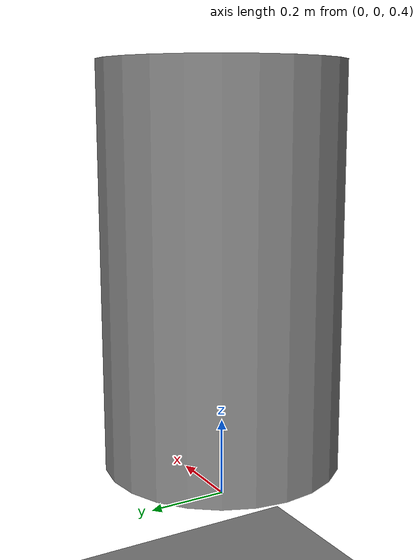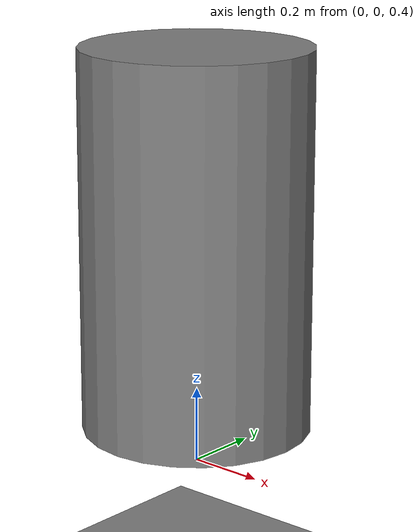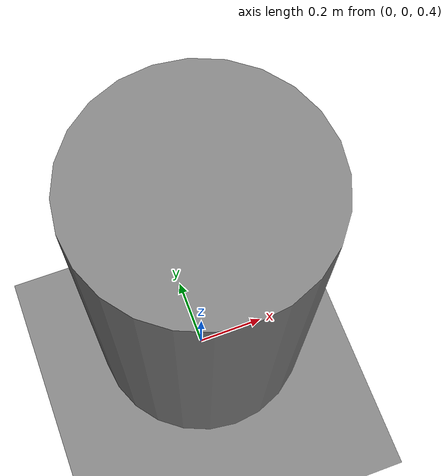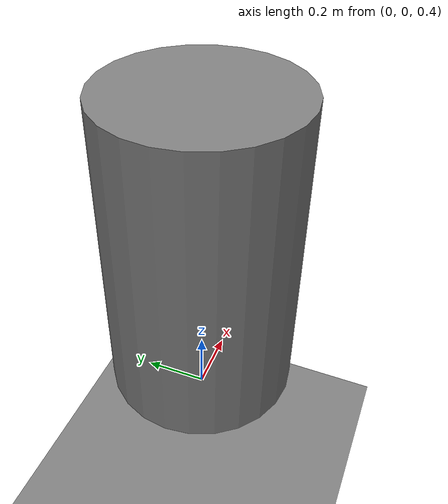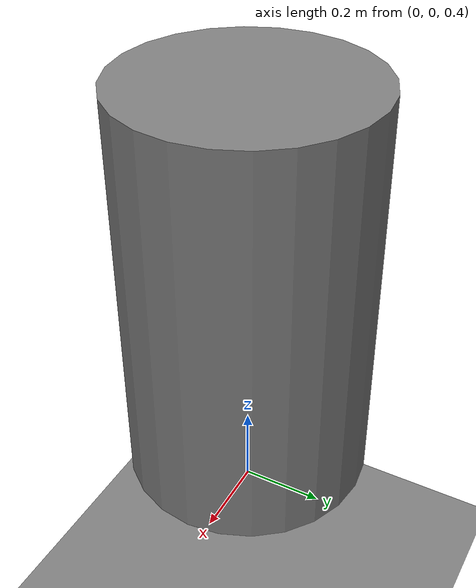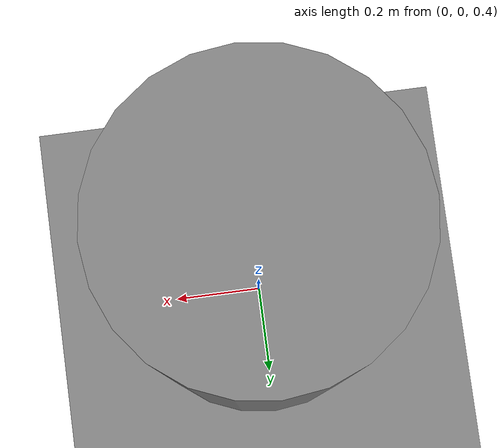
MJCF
<mujoco model="cylinder_plane_separated">
            <option gravity="0 0 0" timestep="0.001"/>
            <worldbody>
                <geom name="floor" type="plane" size="10 10 0.1"/>
                <body name="cyl" pos="0 0 1.0">
                    <joint type="free"/>
                    <geom type="cylinder" size="0.3 0.5"/>
                </body>
            </worldbody>
        </mujoco>
